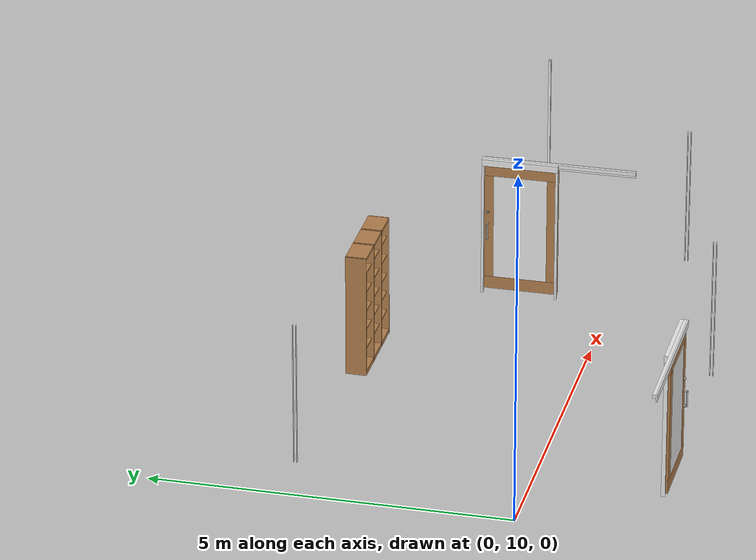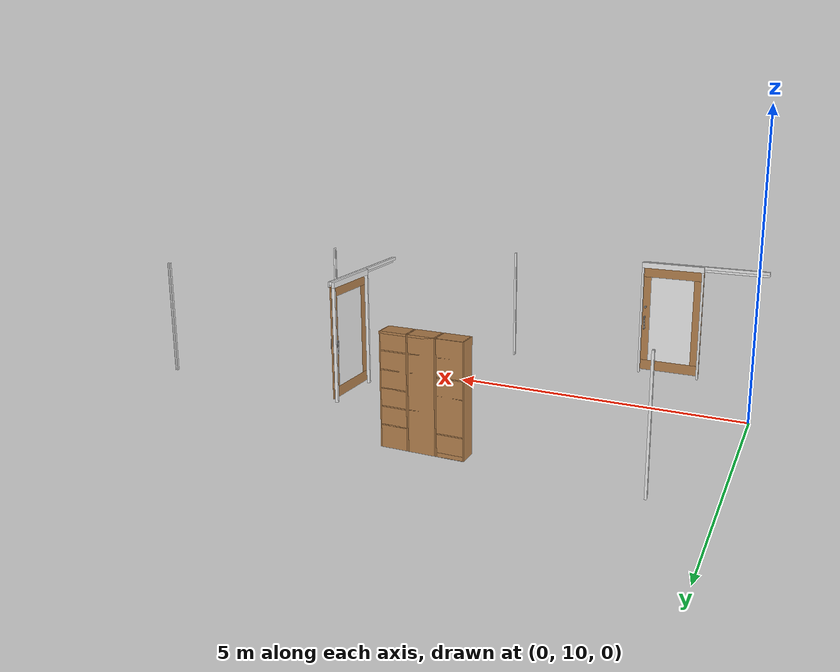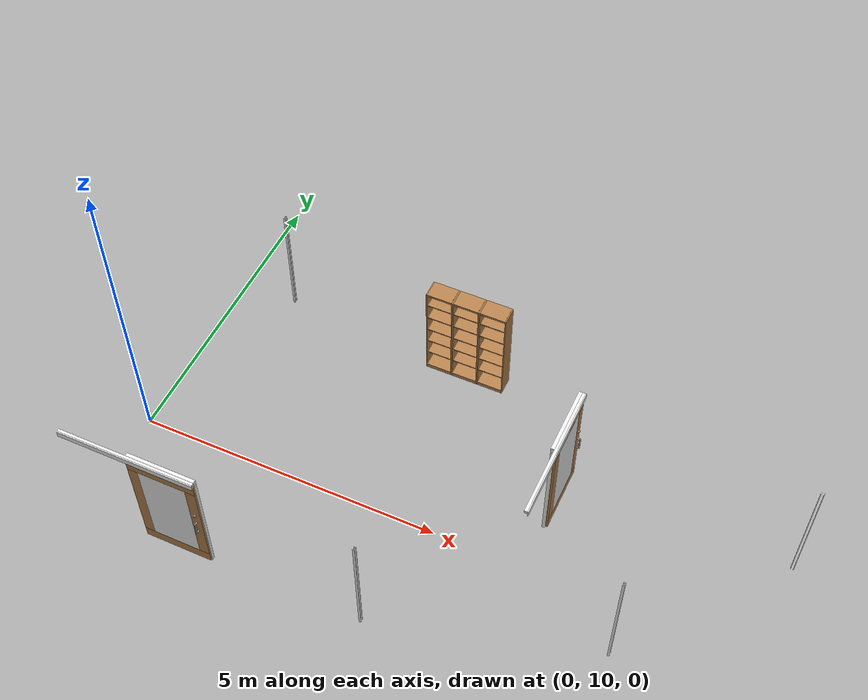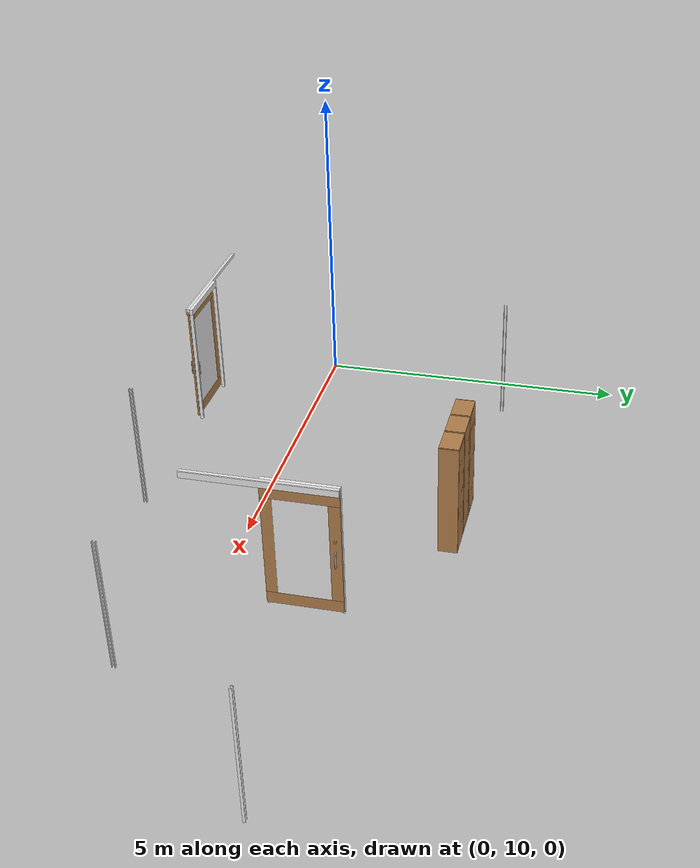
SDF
<sdf version="1.6">
 <world name="default">
  <model name="door_stopper_x13y13">
   <link name="door_frame">
    <visual name="stopper">
     <pose>0.0225 0.0175 1.025 0 -0 0</pose>
     <geometry><box><size>0.01 0.035 2.05</size></box></geometry>
     <material>
      <script><uri>model://base_materials/color/scripts</uri><name>hsr_color/white</name></script>
     </material>
    </visual>
    <collision name="collision_frame_1">
     <pose>0.0225 0.0175 1.025 0 -0 0</pose>
     <geometry><box><size>0.01 0.035 2.05</size></box></geometry>
    </collision>
    <visual name="frame_2">
     <pose>-0.0225 0.0175 1.025 0 -0 0</pose>
     <geometry><box><size>0.01 0.035 2.05</size></box></geometry>
     <material>
      <script><uri>model://base_materials/color/scripts</uri><name>hsr_color/white</name></script>
     </material>
    </visual>
    <collision name="collision_frame_2">
     <pose>-0.0225 0.0175 1.025 0 -0 0</pose>
     <geometry><box><size>0.01 0.035 2.05</size></box></geometry>
    </collision>
   </link>
   <static>1</static>
   <pose>10.1025 11.67 0 0 -0 0</pose>
  </model>
  <model name="door_stopper_x02y16">
   <link name="door_frame">
    <visual name="stopper">
     <pose>0.0225 0.0175 1.025 0 -0 0</pose>
     <geometry><box><size>0.01 0.035 2.05</size></box></geometry>
     <material>
      <script><uri>model://base_materials/color/scripts</uri><name>hsr_color/white</name></script>
     </material>
    </visual>
    <collision name="collision_frame_1">
     <pose>0.0225 0.0175 1.025 0 -0 0</pose>
     <geometry><box><size>0.01 0.035 2.05</size></box></geometry>
    </collision>
    <visual name="frame_2">
     <pose>-0.0225 0.0175 1.025 0 -0 0</pose>
     <geometry><box><size>0.01 0.035 2.05</size></box></geometry>
     <material>
      <script><uri>model://base_materials/color/scripts</uri><name>hsr_color/white</name></script>
     </material>
    </visual>
    <collision name="collision_frame_2">
     <pose>-0.0225 0.0175 1.025 0 -0 0</pose>
     <geometry><box><size>0.01 0.035 2.05</size></box></geometry>
    </collision>
   </link>
   <static>1</static>
   <pose>0.93 13.2075 0 0 -0 1.5708</pose>
  </model>
  <model name="door_x03y09">
   <joint name="frame_to_world_joint" type="revolute">
    <parent>world</parent>
    <child>frame</child>
    <axis>
     <xyz>0 0 1</xyz>
     <limit><upper>0</upper><lower>0</lower></limit>
     <use_parent_model_frame>1</use_parent_model_frame>
     <dynamics><spring_reference>0</spring_reference><spring_stiffness>0</spring_stiffness></dynamics>
    </axis>
   </joint>
   <link name="frame">
    <inertial>
     <mass>50</mass>
     <inertia><ixx>1</ixx><ixy>0</ixy><ixz>0</ixz><iyy>1</iyy><iyz>0</iyz><izz>1</izz></inertia>
    </inertial>
    <visual name="right_frame">
     <pose>0 0.5325 0.995 0 -0 0</pose>
     <geometry><box><size>0.055 0.035 1.99</size></box></geometry>
     <material>
      <script><uri>model://base_materials/color/scripts</uri><name>hsr_color/white</name></script>
     </material>
    </visual>
    <collision name="collision_right_frame">
     <pose>0 0.5325 0.995 0 -0 0</pose>
     <geometry><box><size>0.055 0.035 1.99</size></box></geometry>
    </collision>
    <visual name="left_frame">
     <pose>0 -0.5325 0.995 0 -0 0</pose>
     <geometry><box><size>0.055 0.035 1.99</size></box></geometry>
     <material>
      <script><uri>model://base_materials/color/scripts</uri><name>hsr_color/white</name></script>
     </material>
    </visual>
    <collision name="collision_left_frame">
     <pose>0 -0.5325 0.995 0 -0 0</pose>
     <geometry><box><size>0.055 0.035 1.99</size></box></geometry>
    </collision>
    <visual name="top_frame">
     <pose>0 0 2.04 0 -0 0</pose>
     <geometry><box><size>0.055 1.1 0.1</size></box></geometry>
     <material>
      <script><uri>model://base_materials/color/scripts</uri><name>hsr_color/white</name></script>
     </material>
    </visual>
    <collision name="collision_top_frame">
     <pose>0 0 2.04 0 -0 0</pose>
     <geometry><box><size>0.055 1.1 0.1</size></box></geometry>
    </collision>
    <visual name="top_guard">
     <pose>0.05 -0.55 2.065 0 -0 0</pose>
     <geometry><box><size>0.045 2.2 0.05</size></box></geometry>
     <material>
      <script><uri>model://base_materials/color/scripts</uri><name>hsr_color/white</name></script>
     </material>
    </visual>
    <collision name="collision_top_guard">
     <pose>0.05 -0.55 2.065 0 -0 0</pose>
     <geometry><box><size>0.045 2.2 0.05</size></box></geometry>
    </collision>
    <visual name="front_guard">
     <pose>0.0825 -0.55 2.04 0 -0 0</pose>
     <geometry><box><size>0.02 2.2 0.1</size></box></geometry>
     <material>
      <script><uri>model://base_materials/color/scripts</uri><name>hsr_color/white</name></script>
     </material>
    </visual>
    <collision name="collision_front_guard">
     <pose>0.0825 -0.55 2.04 0 -0 0</pose>
     <geometry><box><size>0.02 2.2 0.1</size></box></geometry>
    </collision>
   </link>
   <link name="door">
    <pose>-0.0275 0 0 0 -0 0</pose>
    <visual name="glass">
     <pose>0.0775 0 1.025 0 -0 0</pose>
     <geometry><box><size>0.03 0.77 1.58</size></box></geometry>
     <material>
      <script>
       <name>hsr_color/white_transparency1</name>
       <name>hsr_color/cornflowerblue_transparency1</name>
       <uri>__default__</uri>
      </script>
     </material>
    </visual>
    <collision name="collision_glass">
     <pose>0.0775 0 1.025 0 -0 0</pose>
     <geometry><box><size>0.03 0.77 1.58</size></box></geometry>
    </collision>
    <visual name="top_frame">
     <pose>0.0775 0 1.9075 0 -0 0</pose>
     <geometry><box><size>0.03 1.1 0.185</size></box></geometry>
     <material>
      <script><uri>model://base_materials/wood/scripts/wood.material</uri><name>base_materials/wood</name></script>
     </material>
    </visual>
    <collision name="collision_top_frame">
     <pose>0.0775 0 1.9075 0 -0 0</pose>
     <geometry><box><size>0.03 1.1 0.185</size></box></geometry>
    </collision>
    <visual name="right_frame">
     <pose>0.0775 0.4675 1.025 0 -0 0</pose>
     <geometry><box><size>0.03 0.165 1.58</size></box></geometry>
     <material>
      <script><uri>model://base_materials/wood/scripts/wood.material</uri><name>base_materials/wood</name></script>
     </material>
    </visual>
    <collision name="collision_right_frame">
     <pose>0.0775 0.4675 1.025 0 -0 0</pose>
     <geometry><box><size>0.03 0.165 1.58</size></box></geometry>
    </collision>
    <visual name="left_frame">
     <pose>0.0775 -0.4675 1.025 0 -0 0</pose>
     <geometry><box><size>0.03 0.165 1.58</size></box></geometry>
     <material>
      <script><uri>model://base_materials/wood/scripts/wood.material</uri><name>base_materials/wood</name></script>
     </material>
    </visual>
    <collision name="collision_left_frame">
     <pose>0.0775 -0.4675 1.025 0 -0 0</pose>
     <geometry><box><size>0.03 0.165 1.58</size></box></geometry>
    </collision>
    <visual name="bottom_frame">
     <pose>0.0775 0 0.1425 0 -0 0</pose>
     <geometry><box><size>0.03 1.1 0.185</size></box></geometry>
     <material>
      <script><uri>model://base_materials/wood/scripts/wood.material</uri><name>base_materials/wood</name></script>
     </material>
    </visual>
    <collision name="collision_bottom_frame">
     <pose>0.0775 0 0.1425 0 -0 0</pose>
     <geometry><box><size>0.03 1.1 0.185</size></box></geometry>
    </collision>
    <visual name="handle_top_frame">
     <pose>0.0775 0.4675 1.0675 3.14159 1.57079 3.14159</pose>
     <geometry><cylinder><radius>0.0125</radius><length>0.125</length></cylinder></geometry>
     <material>
      <script><uri>model://base_materials/color/scripts</uri><name>hsr_color/grey</name></script>
     </material>
    </visual>
    <collision name="collision_handle_top_frame">
     <pose>0.0775 0.4675 1.0675 3.14159 1.57079 3.14159</pose>
     <geometry><cylinder><radius>0.0125</radius><length>0.125</length></cylinder></geometry>
    </collision>
    <visual name="handle_bottom_frame">
     <pose>0.0775 0.4675 0.8425 3.14159 1.57079 3.14159</pose>
     <geometry><cylinder><radius>0.0125</radius><length>0.125</length></cylinder></geometry>
     <material>
      <script><uri>model://base_materials/color/scripts</uri><name>hsr_color/grey</name></script>
     </material>
    </visual>
    <collision name="collision_handle_bottom_frame">
     <pose>0.0775 0.4675 0.8425 3.14159 1.57079 3.14159</pose>
     <geometry><cylinder><radius>0.0125</radius><length>0.125</length></cylinder></geometry>
    </collision>
    <visual name="handle_front_frame">
     <pose>0.14 0.4675 0.955 0 -0 0</pose>
     <geometry><cylinder><radius>0.0125</radius><length>0.225</length></cylinder></geometry>
     <material>
      <script><uri>model://base_materials/color/scripts</uri><name>hsr_color/grey</name></script>
     </material>
    </visual>
    <collision name="collision_handle_front_frame">
     <pose>0.14 0.4675 0.955 0 -0 0</pose>
     <geometry><cylinder><radius>0.0125</radius><length>0.225</length></cylinder></geometry>
    </collision>
    <visual name="handle_back_frame">
     <pose>0.015 0.4675 0.955 0 -0 0</pose>
     <geometry><cylinder><radius>0.0125</radius><length>0.225</length></cylinder></geometry>
     <material>
      <script><uri>model://base_materials/color/scripts</uri><name>hsr_color/grey</name></script>
     </material>
    </visual>
    <collision name="collision_handle_back_frame">
     <pose>0.015 0.4675 0.955 0 -0 0</pose>
     <geometry><cylinder><radius>0.0125</radius><length>0.225</length></cylinder></geometry>
    </collision>
    <visual name="handle_front_top_corner">
     <pose>0.14 0.4675 1.0675 0 -0 0</pose>
     <geometry><sphere><radius>0.0125</radius></sphere></geometry>
     <material>
      <script><uri>model://base_materials/color/scripts</uri><name>hsr_color/grey</name></script>
     </material>
    </visual>
    <collision name="collision_handle_front_top_corner">
     <pose>0.14 0.4675 1.0675 0 -0 0</pose>
     <geometry><sphere><radius>0.0125</radius></sphere></geometry>
    </collision>
    <visual name="handle_front_bottom_corner">
     <pose>0.14 0.4675 0.8425 0 -0 0</pose>
     <geometry><sphere><radius>0.0125</radius></sphere></geometry>
     <material>
      <script><uri>model://base_materials/color/scripts</uri><name>hsr_color/grey</name></script>
     </material>
    </visual>
    <collision name="collision_handle_front_bottom_corner">
     <pose>0.14 0.4675 0.8425 0 -0 0</pose>
     <geometry><sphere><radius>0.0125</radius></sphere></geometry>
    </collision>
    <visual name="handle_back_top_corner">
     <pose>0.015 0.4675 1.0675 0 -0 0</pose>
     <geometry><sphere><radius>0.0125</radius></sphere></geometry>
     <material>
      <script><uri>model://base_materials/color/scripts</uri><name>hsr_color/grey</name></script>
     </material>
    </visual>
    <collision name="collision_handle_back_top_corner">
     <pose>0.015 0.4675 1.0675 0 -0 0</pose>
     <geometry><sphere><radius>0.0125</radius></sphere></geometry>
    </collision>
    <visual name="handle_back_bottom_corner">
     <pose>0.015 0.4675 0.8425 0 -0 0</pose>
     <geometry><sphere><radius>0.0125</radius></sphere></geometry>
     <material>
      <script><uri>model://base_materials/color/scripts</uri><name>hsr_color/grey</name></script>
     </material>
    </visual>
    <collision name="collision_handle_back_bottom_corner">
     <pose>0.015 0.4675 0.8425 0 -0 0</pose>
     <geometry><sphere><radius>0.0125</radius></sphere></geometry>
    </collision>
    <visual name="handle_lock1">
     <pose>0.0775 0.4675 1.25 3.14159 1.57079 3.14159</pose>
     <geometry><cylinder><radius>0.02</radius><length>0.08</length></cylinder></geometry>
     <material>
      <script><uri>model://base_materials/color/scripts</uri><name>hsr_color/grey</name></script>
     </material>
    </visual>
    <collision name="collision_handle_lock1">
     <pose>0.0775 0.4675 1.25 3.14159 1.57079 3.14159</pose>
     <geometry><cylinder><radius>0.02</radius><length>0.08</length></cylinder></geometry>
    </collision>
    <visual name="handle_lock2">
     <pose>0.0775 0.4675 1.25 3.14159 1.57079 3.14159</pose>
     <geometry><cylinder><radius>0.015</radius><length>0.09</length></cylinder></geometry>
     <material>
      <script><uri>model://base_materials/color/scripts</uri><name>hsr_color/grey</name></script>
     </material>
    </visual>
    <collision name="collision_handle_lock2">
     <pose>0.0775 0.4675 1.25 3.14159 1.57079 3.14159</pose>
     <geometry><cylinder><radius>0.015</radius><length>0.09</length></cylinder></geometry>
    </collision>
    <velocity_decay><linear>0</linear><angular>0</angular></velocity_decay>
    <inertial>
     <inertia><ixx>1</ixx><ixy>0</ixy><ixz>0</ixz><iyy>1</iyy><iyz>0</iyz><izz>1</izz></inertia>
     <mass>1</mass>
    </inertial>
   </link>
   <joint name="top_sliding_joint" type="prismatic">
    <parent>frame</parent>
    <child>door</child>
    <axis>
     <dynamics>
      <damping>1</damping>
      <friction>1</friction>
      <spring_reference>0</spring_reference>
      <spring_stiffness>0</spring_stiffness>
     </dynamics>
     <limit><lower>-1</lower><upper>0</upper></limit>
     <xyz>0 1 0</xyz>
     <use_parent_model_frame>1</use_parent_model_frame>
    </axis>
   </joint>
   <static>0</static>
   <pose>1.65 8.23 -0 0 2e-06 -1.5708</pose>
  </model>
  <model name="door_stopper_x08y09a">
   <link name="door_frame">
    <visual name="stopper">
     <pose>0.0225 0.0175 1.025 0 -0 0</pose>
     <geometry><box><size>0.01 0.035 2.05</size></box></geometry>
     <material>
      <script><uri>model://base_materials/color/scripts</uri><name>hsr_color/white</name></script>
     </material>
    </visual>
    <collision name="collision_frame_1">
     <pose>0.0225 0.0175 1.025 0 -0 0</pose>
     <geometry><box><size>0.01 0.035 2.05</size></box></geometry>
    </collision>
    <visual name="frame_2">
     <pose>-0.0225 0.0175 1.025 0 -0 0</pose>
     <geometry><box><size>0.01 0.035 2.05</size></box></geometry>
     <material>
      <script><uri>model://base_materials/color/scripts</uri><name>hsr_color/white</name></script>
     </material>
    </visual>
    <collision name="collision_frame_2">
     <pose>-0.0225 0.0175 1.025 0 -0 0</pose>
     <geometry><box><size>0.01 0.035 2.05</size></box></geometry>
    </collision>
   </link>
   <static>1</static>
   <pose>4.675 8.23 0 0 -0 1.5708</pose>
  </model>
  <model name="door_x08y13">
   <joint name="frame_to_world_joint" type="revolute">
    <parent>world</parent>
    <child>frame</child>
    <axis>
     <xyz>0 0 1</xyz>
     <limit><upper>0</upper><lower>0</lower></limit>
     <use_parent_model_frame>1</use_parent_model_frame>
     <dynamics><spring_reference>0</spring_reference><spring_stiffness>0</spring_stiffness></dynamics>
    </axis>
   </joint>
   <link name="frame">
    <inertial>
     <mass>50</mass>
     <inertia><ixx>1</ixx><ixy>0</ixy><ixz>0</ixz><iyy>1</iyy><iyz>0</iyz><izz>1</izz></inertia>
    </inertial>
    <visual name="right_frame">
     <pose>0 0.5325 0.995 0 -0 0</pose>
     <geometry><box><size>0.055 0.035 1.99</size></box></geometry>
     <material>
      <script><uri>model://base_materials/color/scripts</uri><name>hsr_color/white</name></script>
     </material>
    </visual>
    <collision name="collision_right_frame">
     <pose>0 0.5325 0.995 0 -0 0</pose>
     <geometry><box><size>0.055 0.035 1.99</size></box></geometry>
    </collision>
    <visual name="left_frame">
     <pose>0 -0.5325 0.995 0 -0 0</pose>
     <geometry><box><size>0.055 0.035 1.99</size></box></geometry>
     <material>
      <script><uri>model://base_materials/color/scripts</uri><name>hsr_color/white</name></script>
     </material>
    </visual>
    <collision name="collision_left_frame">
     <pose>0 -0.5325 0.995 0 -0 0</pose>
     <geometry><box><size>0.055 0.035 1.99</size></box></geometry>
    </collision>
    <visual name="top_frame">
     <pose>0 0 2.04 0 -0 0</pose>
     <geometry><box><size>0.055 1.1 0.1</size></box></geometry>
     <material>
      <script><uri>model://base_materials/color/scripts</uri><name>hsr_color/white</name></script>
     </material>
    </visual>
    <collision name="collision_top_frame">
     <pose>0 0 2.04 0 -0 0</pose>
     <geometry><box><size>0.055 1.1 0.1</size></box></geometry>
    </collision>
    <visual name="top_guard">
     <pose>0.05 -0.55 2.065 0 -0 0</pose>
     <geometry><box><size>0.045 2.2 0.05</size></box></geometry>
     <material>
      <script><uri>model://base_materials/color/scripts</uri><name>hsr_color/white</name></script>
     </material>
    </visual>
    <collision name="collision_top_guard">
     <pose>0.05 -0.55 2.065 0 -0 0</pose>
     <geometry><box><size>0.045 2.2 0.05</size></box></geometry>
    </collision>
    <visual name="front_guard">
     <pose>0.0825 -0.55 2.04 0 -0 0</pose>
     <geometry><box><size>0.02 2.2 0.1</size></box></geometry>
     <material>
      <script><uri>model://base_materials/color/scripts</uri><name>hsr_color/white</name></script>
     </material>
    </visual>
    <collision name="collision_front_guard">
     <pose>0.0825 -0.55 2.04 0 -0 0</pose>
     <geometry><box><size>0.02 2.2 0.1</size></box></geometry>
    </collision>
   </link>
   <link name="door">
    <pose>-0.0275 0 0 0 -0 0</pose>
    <visual name="glass">
     <pose>0.0775 0 1.025 0 -0 0</pose>
     <geometry><box><size>0.03 0.77 1.58</size></box></geometry>
     <material>
      <script>
       <name>hsr_color/white_transparency1</name>
       <name>hsr_color/cornflowerblue_transparency1</name>
       <uri>__default__</uri>
      </script>
     </material>
    </visual>
    <collision name="collision_glass">
     <pose>0.0775 0 1.025 0 -0 0</pose>
     <geometry><box><size>0.03 0.77 1.58</size></box></geometry>
    </collision>
    <visual name="top_frame">
     <pose>0.0775 0 1.9075 0 -0 0</pose>
     <geometry><box><size>0.03 1.1 0.185</size></box></geometry>
     <material>
      <script><uri>model://base_materials/wood/scripts/wood.material</uri><name>base_materials/wood</name></script>
     </material>
    </visual>
    <collision name="collision_top_frame">
     <pose>0.0775 0 1.9075 0 -0 0</pose>
     <geometry><box><size>0.03 1.1 0.185</size></box></geometry>
    </collision>
    <visual name="right_frame">
     <pose>0.0775 0.4675 1.025 0 -0 0</pose>
     <geometry><box><size>0.03 0.165 1.58</size></box></geometry>
     <material>
      <script><uri>model://base_materials/wood/scripts/wood.material</uri><name>base_materials/wood</name></script>
     </material>
    </visual>
    <collision name="collision_right_frame">
     <pose>0.0775 0.4675 1.025 0 -0 0</pose>
     <geometry><box><size>0.03 0.165 1.58</size></box></geometry>
    </collision>
    <visual name="left_frame">
     <pose>0.0775 -0.4675 1.025 0 -0 0</pose>
     <geometry><box><size>0.03 0.165 1.58</size></box></geometry>
     <material>
      <script><uri>model://base_materials/wood/scripts/wood.material</uri><name>base_materials/wood</name></script>
     </material>
    </visual>
    <collision name="collision_left_frame">
     <pose>0.0775 -0.4675 1.025 0 -0 0</pose>
     <geometry><box><size>0.03 0.165 1.58</size></box></geometry>
    </collision>
    <visual name="bottom_frame">
     <pose>0.0775 0 0.1425 0 -0 0</pose>
     <geometry><box><size>0.03 1.1 0.185</size></box></geometry>
     <material>
      <script><uri>model://base_materials/wood/scripts/wood.material</uri><name>base_materials/wood</name></script>
     </material>
    </visual>
    <collision name="collision_bottom_frame">
     <pose>0.0775 0 0.1425 0 -0 0</pose>
     <geometry><box><size>0.03 1.1 0.185</size></box></geometry>
    </collision>
    <visual name="handle_top_frame">
     <pose>0.0775 0.4675 1.0675 3.14159 1.57079 3.14159</pose>
     <geometry><cylinder><radius>0.0125</radius><length>0.125</length></cylinder></geometry>
     <material>
      <script><uri>model://base_materials/color/scripts</uri><name>hsr_color/grey</name></script>
     </material>
    </visual>
    <collision name="collision_handle_top_frame">
     <pose>0.0775 0.4675 1.0675 3.14159 1.57079 3.14159</pose>
     <geometry><cylinder><radius>0.0125</radius><length>0.125</length></cylinder></geometry>
    </collision>
    <visual name="handle_bottom_frame">
     <pose>0.0775 0.4675 0.8425 3.14159 1.57079 3.14159</pose>
     <geometry><cylinder><radius>0.0125</radius><length>0.125</length></cylinder></geometry>
     <material>
      <script><uri>model://base_materials/color/scripts</uri><name>hsr_color/grey</name></script>
     </material>
    </visual>
    <collision name="collision_handle_bottom_frame">
     <pose>0.0775 0.4675 0.8425 3.14159 1.57079 3.14159</pose>
     <geometry><cylinder><radius>0.0125</radius><length>0.125</length></cylinder></geometry>
    </collision>
    <visual name="handle_front_frame">
     <pose>0.14 0.4675 0.955 0 -0 0</pose>
     <geometry><cylinder><radius>0.0125</radius><length>0.225</length></cylinder></geometry>
     <material>
      <script><uri>model://base_materials/color/scripts</uri><name>hsr_color/grey</name></script>
     </material>
    </visual>
    <collision name="collision_handle_front_frame">
     <pose>0.14 0.4675 0.955 0 -0 0</pose>
     <geometry><cylinder><radius>0.0125</radius><length>0.225</length></cylinder></geometry>
    </collision>
    <visual name="handle_back_frame">
     <pose>0.015 0.4675 0.955 0 -0 0</pose>
     <geometry><cylinder><radius>0.0125</radius><length>0.225</length></cylinder></geometry>
     <material>
      <script><uri>model://base_materials/color/scripts</uri><name>hsr_color/grey</name></script>
     </material>
    </visual>
    <collision name="collision_handle_back_frame">
     <pose>0.015 0.4675 0.955 0 -0 0</pose>
     <geometry><cylinder><radius>0.0125</radius><length>0.225</length></cylinder></geometry>
    </collision>
    <visual name="handle_front_top_corner">
     <pose>0.14 0.4675 1.0675 0 -0 0</pose>
     <geometry><sphere><radius>0.0125</radius></sphere></geometry>
     <material>
      <script><uri>model://base_materials/color/scripts</uri><name>hsr_color/grey</name></script>
     </material>
    </visual>
    <collision name="collision_handle_front_top_corner">
     <pose>0.14 0.4675 1.0675 0 -0 0</pose>
     <geometry><sphere><radius>0.0125</radius></sphere></geometry>
    </collision>
    <visual name="handle_front_bottom_corner">
     <pose>0.14 0.4675 0.8425 0 -0 0</pose>
     <geometry><sphere><radius>0.0125</radius></sphere></geometry>
     <material>
      <script><uri>model://base_materials/color/scripts</uri><name>hsr_color/grey</name></script>
     </material>
    </visual>
    <collision name="collision_handle_front_bottom_corner">
     <pose>0.14 0.4675 0.8425 0 -0 0</pose>
     <geometry><sphere><radius>0.0125</radius></sphere></geometry>
    </collision>
    <visual name="handle_back_top_corner">
     <pose>0.015 0.4675 1.0675 0 -0 0</pose>
     <geometry><sphere><radius>0.0125</radius></sphere></geometry>
     <material>
      <script><uri>model://base_materials/color/scripts</uri><name>hsr_color/grey</name></script>
     </material>
    </visual>
    <collision name="collision_handle_back_top_corner">
     <pose>0.015 0.4675 1.0675 0 -0 0</pose>
     <geometry><sphere><radius>0.0125</radius></sphere></geometry>
    </collision>
    <visual name="handle_back_bottom_corner">
     <pose>0.015 0.4675 0.8425 0 -0 0</pose>
     <geometry><sphere><radius>0.0125</radius></sphere></geometry>
     <material>
      <script><uri>model://base_materials/color/scripts</uri><name>hsr_color/grey</name></script>
     </material>
    </visual>
    <collision name="collision_handle_back_bottom_corner">
     <pose>0.015 0.4675 0.8425 0 -0 0</pose>
     <geometry><sphere><radius>0.0125</radius></sphere></geometry>
    </collision>
    <visual name="handle_lock1">
     <pose>0.0775 0.4675 1.25 3.14159 1.57079 3.14159</pose>
     <geometry><cylinder><radius>0.02</radius><length>0.08</length></cylinder></geometry>
     <material>
      <script><uri>model://base_materials/color/scripts</uri><name>hsr_color/grey</name></script>
     </material>
    </visual>
    <collision name="collision_handle_lock1">
     <pose>0.0775 0.4675 1.25 3.14159 1.57079 3.14159</pose>
     <geometry><cylinder><radius>0.02</radius><length>0.08</length></cylinder></geometry>
    </collision>
    <visual name="handle_lock2">
     <pose>0.0775 0.4675 1.25 3.14159 1.57079 3.14159</pose>
     <geometry><cylinder><radius>0.015</radius><length>0.09</length></cylinder></geometry>
     <material>
      <script><uri>model://base_materials/color/scripts</uri><name>hsr_color/grey</name></script>
     </material>
    </visual>
    <collision name="collision_handle_lock2">
     <pose>0.0775 0.4675 1.25 3.14159 1.57079 3.14159</pose>
     <geometry><cylinder><radius>0.015</radius><length>0.09</length></cylinder></geometry>
    </collision>
    <velocity_decay><linear>0</linear><angular>0</angular></velocity_decay>
    <inertial>
     <inertia><ixx>1</ixx><ixy>0</ixy><ixz>0</ixz><iyy>1</iyy><iyz>0</iyz><izz>1</izz></inertia>
     <mass>1</mass>
    </inertial>
   </link>
   <joint name="top_sliding_joint" type="prismatic">
    <parent>frame</parent>
    <child>door</child>
    <axis>
     <dynamics>
      <damping>1</damping>
      <friction>1</friction>
      <spring_reference>0</spring_reference>
      <spring_stiffness>0</spring_stiffness>
     </dynamics>
     <limit><lower>-1</lower><upper>0</upper></limit>
     <xyz>0 1 0</xyz>
     <use_parent_model_frame>1</use_parent_model_frame>
    </axis>
   </joint>
   <static>0</static>
   <pose>6.47 11.35 -0 -0 -0 -0</pose>
  </model>
  <model name="door_stopper_x10y11">
   <link name="door_frame">
    <visual name="stopper">
     <pose>0.0225 0.0175 1.025 0 -0 0</pose>
     <geometry><box><size>0.01 0.035 2.05</size></box></geometry>
     <material>
      <script><uri>model://base_materials/color/scripts</uri><name>hsr_color/white</name></script>
     </material>
    </visual>
    <collision name="collision_frame_1">
     <pose>0.0225 0.0175 1.025 0 -0 0</pose>
     <geometry><box><size>0.01 0.035 2.05</size></box></geometry>
    </collision>
    <visual name="frame_2">
     <pose>-0.0225 0.0175 1.025 0 -0 0</pose>
     <geometry><box><size>0.01 0.035 2.05</size></box></geometry>
     <material>
      <script><uri>model://base_materials/color/scripts</uri><name>hsr_color/white</name></script>
     </material>
    </visual>
    <collision name="collision_frame_2">
     <pose>-0.0225 0.0175 1.025 0 -0 0</pose>
     <geometry><box><size>0.01 0.035 2.05</size></box></geometry>
    </collision>
   </link>
   <static>1</static>
   <pose>8.13 9.23 0 0 -0 1.5708</pose>
  </model>
  <model name="high_shelf01">
   <link name="link">
    <inertial>
     <mass>5</mass>
     <inertia><ixx>1</ixx><ixy>0</ixy><ixz>0</ixz><iyy>1</iyy><iyz>0</iyz><izz>1</izz></inertia>
    </inertial>
    <visual name="left_board">
     <pose>-0.1475 0.009 0.898 0 -0 0</pose>
     <geometry><box><size>0.295 0.018 1.796</size></box></geometry>
     <material>
      <script>
       <uri>model://base_materials/wood/scripts</uri>
       <uri>model://base_materials/wood/textures</uri>
       <name>base_materials/light_wood</name>
      </script>
     </material>
    </visual>
    <collision name="collision_left_board">
     <pose>-0.1475 0.009 0.898 0 -0 0</pose>
     <geometry><box><size>0.295 0.018 1.796</size></box></geometry>
    </collision>
    <visual name="right_board">
     <pose>-0.1475 0.441 0.898 0 -0 0</pose>
     <geometry><box><size>0.295 0.018 1.796</size></box></geometry>
     <material>
      <script>
       <uri>model://base_materials/wood/scripts</uri>
       <uri>model://base_materials/wood/textures</uri>
       <name>base_materials/light_wood</name>
      </script>
     </material>
    </visual>
    <collision name="collision_right_board">
     <pose>-0.1475 0.441 0.898 0 -0 0</pose>
     <geometry><box><size>0.295 0.018 1.796</size></box></geometry>
    </collision>
    <visual name="top_board">
     <pose>-0.1475 0.225 1.7825 0 -0 0</pose>
     <geometry><box><size>0.295 0.414 0.035</size></box></geometry>
     <material>
      <script>
       <uri>model://base_materials/wood/scripts</uri>
       <uri>model://base_materials/wood/textures</uri>
       <name>base_materials/light_wood</name>
      </script>
     </material>
    </visual>
    <collision name="collision_top_board">
     <pose>-0.1475 0.225 1.7825 0 -0 0</pose>
     <geometry><box><size>0.295 0.414 0.035</size></box></geometry>
    </collision>
    <visual name="1st_shelf">
     <pose>-0.162 0.225 1.51 0 -0 0</pose>
     <geometry><box><size>0.266 0.414 0.018</size></box></geometry>
     <material>
      <script>
       <uri>model://base_materials/wood/scripts</uri>
       <uri>model://base_materials/wood/textures</uri>
       <name>base_materials/light_wood</name>
      </script>
     </material>
    </visual>
    <collision name="collision_1st_shelf">
     <pose>-0.162 0.225 1.51 0 -0 0</pose>
     <geometry><box><size>0.266 0.414 0.018</size></box></geometry>
    </collision>
    <visual name="2nd_shelf">
     <pose>-0.162 0.225 1.22 0 -0 0</pose>
     <geometry><box><size>0.266 0.414 0.018</size></box></geometry>
     <material>
      <script>
       <uri>model://base_materials/wood/scripts</uri>
       <uri>model://base_materials/wood/textures</uri>
       <name>base_materials/light_wood</name>
      </script>
     </material>
    </visual>
    <collision name="collision_2nd_shelf">
     <pose>-0.162 0.225 1.22 0 -0 0</pose>
     <geometry><box><size>0.266 0.414 0.018</size></box></geometry>
    </collision>
    <visual name="3rd_shelf">
     <pose>-0.162 0.225 0.93 0 -0 0</pose>
     <geometry><box><size>0.266 0.414 0.018</size></box></geometry>
     <material>
      <script>
       <uri>model://base_materials/wood/scripts</uri>
       <uri>model://base_materials/wood/textures</uri>
       <name>base_materials/light_wood</name>
      </script>
     </material>
    </visual>
    <collision name="collision_3rd_shelf">
     <pose>-0.162 0.225 0.93 0 -0 0</pose>
     <geometry><box><size>0.266 0.414 0.018</size></box></geometry>
    </collision>
    <visual name="4th_shelf">
     <pose>-0.162 0.225 0.65 0 -0 0</pose>
     <geometry><box><size>0.266 0.414 0.018</size></box></geometry>
     <material>
      <script>
       <uri>model://base_materials/wood/scripts</uri>
       <uri>model://base_materials/wood/textures</uri>
       <name>base_materials/light_wood</name>
      </script>
     </material>
    </visual>
    <collision name="collision_4th_shelf">
     <pose>-0.162 0.225 0.65 0 -0 0</pose>
     <geometry><box><size>0.266 0.414 0.018</size></box></geometry>
    </collision>
    <visual name="5th_shelf">
     <pose>-0.162 0.225 0.36 0 -0 0</pose>
     <geometry><box><size>0.266 0.414 0.018</size></box></geometry>
     <material>
      <script>
       <uri>model://base_materials/wood/scripts</uri>
       <uri>model://base_materials/wood/textures</uri>
       <name>base_materials/light_wood</name>
      </script>
     </material>
    </visual>
    <collision name="collision_5th_shelf">
     <pose>-0.162 0.225 0.36 0 -0 0</pose>
     <geometry><box><size>0.266 0.414 0.018</size></box></geometry>
    </collision>
    <visual name="bottom_board">
     <pose>-0.1475 0.225 0.035 0 -0 0</pose>
     <geometry><box><size>0.295 0.414 0.07</size></box></geometry>
     <material>
      <script>
       <uri>model://base_materials/wood/scripts</uri>
       <uri>model://base_materials/wood/textures</uri>
       <name>base_materials/light_wood</name>
      </script>
     </material>
    </visual>
    <collision name="collision_bottom_board">
     <pose>-0.1475 0.225 0.035 0 -0 0</pose>
     <geometry><box><size>0.295 0.414 0.07</size></box></geometry>
    </collision>
    <visual name="back_board">
     <pose>-0.286 0.225 0.898 0 -0 0</pose>
     <geometry><box><size>0.018 0.414 1.796</size></box></geometry>
     <material>
      <script>
       <uri>model://base_materials/wood/scripts</uri>
       <uri>model://base_materials/wood/textures</uri>
       <name>base_materials/light_wood</name>
      </script>
     </material>
    </visual>
    <collision name="collision_back_board">
     <pose>-0.286 0.225 0.898 0 -0 0</pose>
     <geometry><box><size>0.018 0.414 1.796</size></box></geometry>
    </collision>
    <velocity_decay><linear>0</linear><angular>0</angular></velocity_decay>
   </link>
   <static>1</static>
   <pose>4.45 12.87 0 0 0 -1.5708</pose>
  </model>
  <model name="high_shelf02">
   <link name="link">
    <inertial>
     <mass>5</mass>
     <inertia><ixx>1</ixx><ixy>0</ixy><ixz>0</ixz><iyy>1</iyy><iyz>0</iyz><izz>1</izz></inertia>
    </inertial>
    <visual name="left_board">
     <pose>-0.1475 0.009 0.898 0 -0 0</pose>
     <geometry><box><size>0.295 0.018 1.796</size></box></geometry>
     <material>
      <script>
       <uri>model://base_materials/wood/scripts</uri>
       <uri>model://base_materials/wood/textures</uri>
       <name>base_materials/light_wood</name>
      </script>
     </material>
    </visual>
    <collision name="collision_left_board">
     <pose>-0.1475 0.009 0.898 0 -0 0</pose>
     <geometry><box><size>0.295 0.018 1.796</size></box></geometry>
    </collision>
    <visual name="right_board">
     <pose>-0.1475 0.441 0.898 0 -0 0</pose>
     <geometry><box><size>0.295 0.018 1.796</size></box></geometry>
     <material>
      <script>
       <uri>model://base_materials/wood/scripts</uri>
       <uri>model://base_materials/wood/textures</uri>
       <name>base_materials/light_wood</name>
      </script>
     </material>
    </visual>
    <collision name="collision_right_board">
     <pose>-0.1475 0.441 0.898 0 -0 0</pose>
     <geometry><box><size>0.295 0.018 1.796</size></box></geometry>
    </collision>
    <visual name="top_board">
     <pose>-0.1475 0.225 1.7825 0 -0 0</pose>
     <geometry><box><size>0.295 0.414 0.035</size></box></geometry>
     <material>
      <script>
       <uri>model://base_materials/wood/scripts</uri>
       <uri>model://base_materials/wood/textures</uri>
       <name>base_materials/light_wood</name>
      </script>
     </material>
    </visual>
    <collision name="collision_top_board">
     <pose>-0.1475 0.225 1.7825 0 -0 0</pose>
     <geometry><box><size>0.295 0.414 0.035</size></box></geometry>
    </collision>
    <visual name="1st_shelf">
     <pose>-0.162 0.225 1.51 0 -0 0</pose>
     <geometry><box><size>0.266 0.414 0.018</size></box></geometry>
     <material>
      <script>
       <uri>model://base_materials/wood/scripts</uri>
       <uri>model://base_materials/wood/textures</uri>
       <name>base_materials/light_wood</name>
      </script>
     </material>
    </visual>
    <collision name="collision_1st_shelf">
     <pose>-0.162 0.225 1.51 0 -0 0</pose>
     <geometry><box><size>0.266 0.414 0.018</size></box></geometry>
    </collision>
    <visual name="2nd_shelf">
     <pose>-0.162 0.225 1.22 0 -0 0</pose>
     <geometry><box><size>0.266 0.414 0.018</size></box></geometry>
     <material>
      <script>
       <uri>model://base_materials/wood/scripts</uri>
       <uri>model://base_materials/wood/textures</uri>
       <name>base_materials/light_wood</name>
      </script>
     </material>
    </visual>
    <collision name="collision_2nd_shelf">
     <pose>-0.162 0.225 1.22 0 -0 0</pose>
     <geometry><box><size>0.266 0.414 0.018</size></box></geometry>
    </collision>
    <visual name="3rd_shelf">
     <pose>-0.162 0.225 0.93 0 -0 0</pose>
     <geometry><box><size>0.266 0.414 0.018</size></box></geometry>
     <material>
      <script>
       <uri>model://base_materials/wood/scripts</uri>
       <uri>model://base_materials/wood/textures</uri>
       <name>base_materials/light_wood</name>
      </script>
     </material>
    </visual>
    <collision name="collision_3rd_shelf">
     <pose>-0.162 0.225 0.93 0 -0 0</pose>
     <geometry><box><size>0.266 0.414 0.018</size></box></geometry>
    </collision>
    <visual name="4th_shelf">
     <pose>-0.162 0.225 0.65 0 -0 0</pose>
     <geometry><box><size>0.266 0.414 0.018</size></box></geometry>
     <material>
      <script>
       <uri>model://base_materials/wood/scripts</uri>
       <uri>model://base_materials/wood/textures</uri>
       <name>base_materials/light_wood</name>
      </script>
     </material>
    </visual>
    <collision name="collision_4th_shelf">
     <pose>-0.162 0.225 0.65 0 -0 0</pose>
     <geometry><box><size>0.266 0.414 0.018</size></box></geometry>
    </collision>
    <visual name="5th_shelf">
     <pose>-0.162 0.225 0.36 0 -0 0</pose>
     <geometry><box><size>0.266 0.414 0.018</size></box></geometry>
     <material>
      <script>
       <uri>model://base_materials/wood/scripts</uri>
       <uri>model://base_materials/wood/textures</uri>
       <name>base_materials/light_wood</name>
      </script>
     </material>
    </visual>
    <collision name="collision_5th_shelf">
     <pose>-0.162 0.225 0.36 0 -0 0</pose>
     <geometry><box><size>0.266 0.414 0.018</size></box></geometry>
    </collision>
    <visual name="bottom_board">
     <pose>-0.1475 0.225 0.035 0 -0 0</pose>
     <geometry><box><size>0.295 0.414 0.07</size></box></geometry>
     <material>
      <script>
       <uri>model://base_materials/wood/scripts</uri>
       <uri>model://base_materials/wood/textures</uri>
       <name>base_materials/light_wood</name>
      </script>
     </material>
    </visual>
    <collision name="collision_bottom_board">
     <pose>-0.1475 0.225 0.035 0 -0 0</pose>
     <geometry><box><size>0.295 0.414 0.07</size></box></geometry>
    </collision>
    <visual name="back_board">
     <pose>-0.286 0.225 0.898 0 -0 0</pose>
     <geometry><box><size>0.018 0.414 1.796</size></box></geometry>
     <material>
      <script>
       <uri>model://base_materials/wood/scripts</uri>
       <uri>model://base_materials/wood/textures</uri>
       <name>base_materials/light_wood</name>
      </script>
     </material>
    </visual>
    <collision name="collision_back_board">
     <pose>-0.286 0.225 0.898 0 -0 0</pose>
     <geometry><box><size>0.018 0.414 1.796</size></box></geometry>
    </collision>
    <velocity_decay><linear>0</linear><angular>0</angular></velocity_decay>
   </link>
   <static>1</static>
   <pose>4 12.87 0 0 0 -1.5708</pose>
  </model>
  <model name="high_shelf03">
   <link name="link">
    <inertial>
     <mass>5</mass>
     <inertia><ixx>1</ixx><ixy>0</ixy><ixz>0</ixz><iyy>1</iyy><iyz>0</iyz><izz>1</izz></inertia>
    </inertial>
    <visual name="left_board">
     <pose>-0.1475 0.009 0.898 0 -0 0</pose>
     <geometry><box><size>0.295 0.018 1.796</size></box></geometry>
     <material>
      <script>
       <uri>model://base_materials/wood/scripts</uri>
       <uri>model://base_materials/wood/textures</uri>
       <name>base_materials/light_wood</name>
      </script>
     </material>
    </visual>
    <collision name="collision_left_board">
     <pose>-0.1475 0.009 0.898 0 -0 0</pose>
     <geometry><box><size>0.295 0.018 1.796</size></box></geometry>
    </collision>
    <visual name="right_board">
     <pose>-0.1475 0.441 0.898 0 -0 0</pose>
     <geometry><box><size>0.295 0.018 1.796</size></box></geometry>
     <material>
      <script>
       <uri>model://base_materials/wood/scripts</uri>
       <uri>model://base_materials/wood/textures</uri>
       <name>base_materials/light_wood</name>
      </script>
     </material>
    </visual>
    <collision name="collision_right_board">
     <pose>-0.1475 0.441 0.898 0 -0 0</pose>
     <geometry><box><size>0.295 0.018 1.796</size></box></geometry>
    </collision>
    <visual name="top_board">
     <pose>-0.1475 0.225 1.7825 0 -0 0</pose>
     <geometry><box><size>0.295 0.414 0.035</size></box></geometry>
     <material>
      <script>
       <uri>model://base_materials/wood/scripts</uri>
       <uri>model://base_materials/wood/textures</uri>
       <name>base_materials/light_wood</name>
      </script>
     </material>
    </visual>
    <collision name="collision_top_board">
     <pose>-0.1475 0.225 1.7825 0 -0 0</pose>
     <geometry><box><size>0.295 0.414 0.035</size></box></geometry>
    </collision>
    <visual name="1st_shelf">
     <pose>-0.162 0.225 1.51 0 -0 0</pose>
     <geometry><box><size>0.266 0.414 0.018</size></box></geometry>
     <material>
      <script>
       <uri>model://base_materials/wood/scripts</uri>
       <uri>model://base_materials/wood/textures</uri>
       <name>base_materials/light_wood</name>
      </script>
     </material>
    </visual>
    <collision name="collision_1st_shelf">
     <pose>-0.162 0.225 1.51 0 -0 0</pose>
     <geometry><box><size>0.266 0.414 0.018</size></box></geometry>
    </collision>
    <visual name="2nd_shelf">
     <pose>-0.162 0.225 1.22 0 -0 0</pose>
     <geometry><box><size>0.266 0.414 0.018</size></box></geometry>
     <material>
      <script>
       <uri>model://base_materials/wood/scripts</uri>
       <uri>model://base_materials/wood/textures</uri>
       <name>base_materials/light_wood</name>
      </script>
     </material>
    </visual>
    <collision name="collision_2nd_shelf">
     <pose>-0.162 0.225 1.22 0 -0 0</pose>
     <geometry><box><size>0.266 0.414 0.018</size></box></geometry>
    </collision>
    <visual name="3rd_shelf">
     <pose>-0.162 0.225 0.93 0 -0 0</pose>
     <geometry><box><size>0.266 0.414 0.018</size></box></geometry>
     <material>
      <script>
       <uri>model://base_materials/wood/scripts</uri>
       <uri>model://base_materials/wood/textures</uri>
       <name>base_materials/light_wood</name>
      </script>
     </material>
    </visual>
    <collision name="collision_3rd_shelf">
     <pose>-0.162 0.225 0.93 0 -0 0</pose>
     <geometry><box><size>0.266 0.414 0.018</size></box></geometry>
    </collision>
    <visual name="4th_shelf">
     <pose>-0.162 0.225 0.65 0 -0 0</pose>
     <geometry><box><size>0.266 0.414 0.018</size></box></geometry>
     <material>
      <script>
       <uri>model://base_materials/wood/scripts</uri>
       <uri>model://base_materials/wood/textures</uri>
       <name>base_materials/light_wood</name>
      </script>
     </material>
    </visual>
    <collision name="collision_4th_shelf">
     <pose>-0.162 0.225 0.65 0 -0 0</pose>
     <geometry><box><size>0.266 0.414 0.018</size></box></geometry>
    </collision>
    <visual name="5th_shelf">
     <pose>-0.162 0.225 0.36 0 -0 0</pose>
     <geometry><box><size>0.266 0.414 0.018</size></box></geometry>
     <material>
      <script>
       <uri>model://base_materials/wood/scripts</uri>
       <uri>model://base_materials/wood/textures</uri>
       <name>base_materials/light_wood</name>
      </script>
     </material>
    </visual>
    <collision name="collision_5th_shelf">
     <pose>-0.162 0.225 0.36 0 -0 0</pose>
     <geometry><box><size>0.266 0.414 0.018</size></box></geometry>
    </collision>
    <visual name="bottom_board">
     <pose>-0.1475 0.225 0.035 0 -0 0</pose>
     <geometry><box><size>0.295 0.414 0.07</size></box></geometry>
     <material>
      <script>
       <uri>model://base_materials/wood/scripts</uri>
       <uri>model://base_materials/wood/textures</uri>
       <name>base_materials/light_wood</name>
      </script>
     </material>
    </visual>
    <collision name="collision_bottom_board">
     <pose>-0.1475 0.225 0.035 0 -0 0</pose>
     <geometry><box><size>0.295 0.414 0.07</size></box></geometry>
    </collision>
    <visual name="back_board">
     <pose>-0.286 0.225 0.898 0 -0 0</pose>
     <geometry><box><size>0.018 0.414 1.796</size></box></geometry>
     <material>
      <script>
       <uri>model://base_materials/wood/scripts</uri>
       <uri>model://base_materials/wood/textures</uri>
       <name>base_materials/light_wood</name>
      </script>
     </material>
    </visual>
    <collision name="collision_back_board">
     <pose>-0.286 0.225 0.898 0 -0 0</pose>
     <geometry><box><size>0.018 0.414 1.796</size></box></geometry>
    </collision>
    <velocity_decay><linear>0</linear><angular>0</angular></velocity_decay>
   </link>
   <static>1</static>
   <pose>3.55 12.87 0 0 0 -1.5708</pose>
  </model>
 </world>
</sdf>
